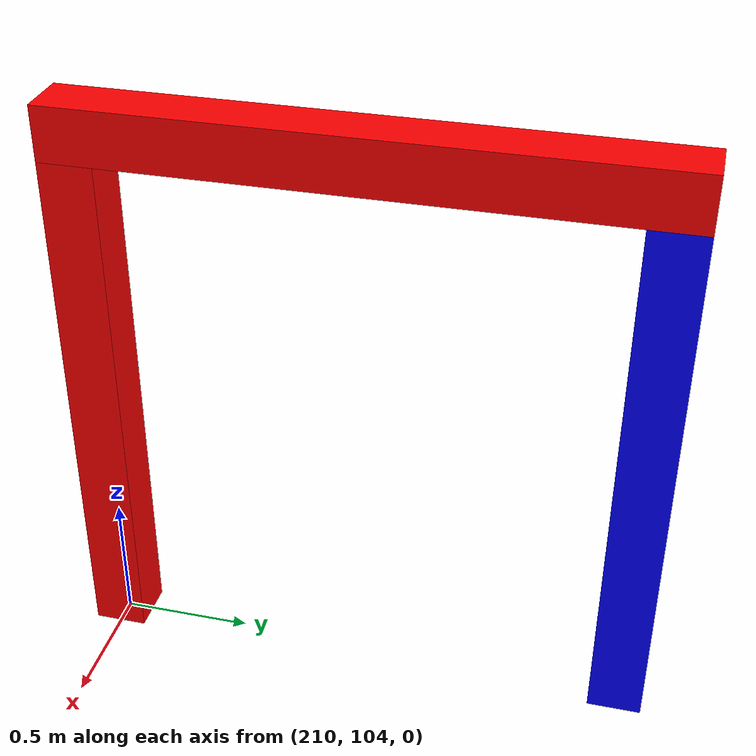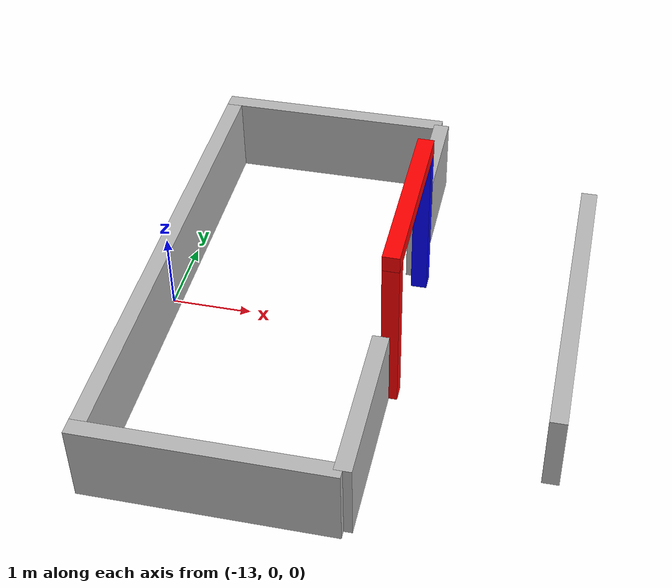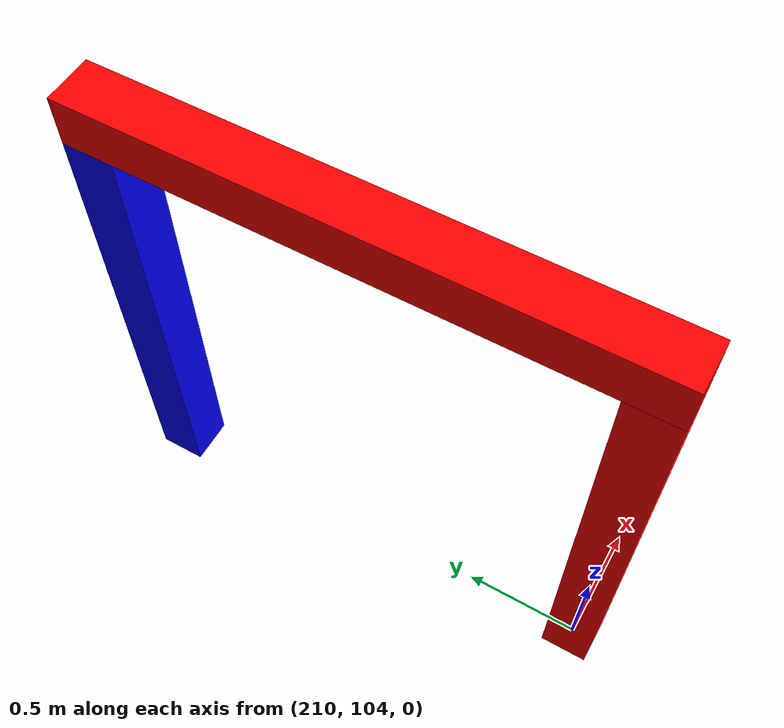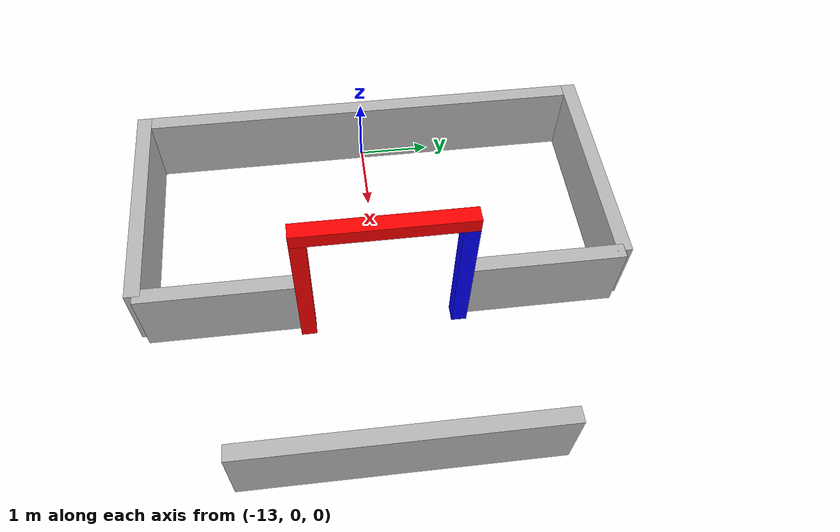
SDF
<sdf version="1.3">
 <world name="default">
  <light type="directional" name="sun">
   <pose>0 0 100 0 0 0</pose>
   <diffuse>0.9 0.9 0.9 1</diffuse>
   <specular>0.1 0.1 0.1 1</specular>
   <attenuation>
    <range>1000</range>
    <constant>0.9</constant>
    <linear>0.01</linear>
    <quadratic>0.001</quadratic>
   </attenuation>
   <direction>0.2 0.0 -1.0</direction>
  </light>
  <light type="point" name="light_bulb">
   <cast_shadows>false</cast_shadows>
   <pose>-14 0 5 0 0 0</pose>
   <diffuse>0.5 0.5 0.5 1</diffuse>
   <specular>0.0 0.0 0.0 1</specular>
   <attenuation>
    <range>80</range>
    <constant>0.9</constant>
    <linear>0.01</linear>
    <quadratic>0.001</quadratic>
   </attenuation>
  </light>
  <include><uri>model://gate</uri><pose>210 105 1.0 0 0 0</pose></include>
  <include><uri>model://starting_pen</uri><pose>-13 0 0.5 0 0 0</pose></include>
  <include><uri>model://gate</uri><name>start_gate</name><pose>-10 0 1.0 0 0 0</pose></include>
 </world>
</sdf>

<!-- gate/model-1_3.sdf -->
<sdf version="1.3">

  <model name="gate">
    <static>true</static>
    <pose>0 0 1.0 0 0 0</pose>
    <link name="link">
      <collision name="right_collision">
        <pose>0 -1.0 0 0 0 0</pose>
        <geometry>
          <box>
            <size>0.2 0.2 2.0</size>
          </box>
        </geometry>
      </collision>
      <visual name="right_visual">
        <pose>0 -1.0 0 0 0 0</pose>
        <geometry>
          <box>
            <size>0.2 0.2 2.0</size>
          </box>
        </geometry>
        <material>
          <ambient>1 0 0 0</ambient>
          <diffuse>1 0 0 0</diffuse>
          <emissive>.2 0 0 0</emissive>
          <specular>.1 .1 .1 0</specular>
        </material>
      </visual>

      <collision name="left_collision">
        <pose>0 1.0 0 0 0 0</pose>
        <geometry>
          <box>
            <size>0.2 0.2 2.0</size>
          </box>
        </geometry>
      </collision>
      <visual name="left_visual">
        <pose>0 1.0 0 0 0 0</pose>
        <geometry>
          <box>
            <size>0.2 0.2 2.0</size>
          </box>
        </geometry>
        <material>
          <ambient>0 0 1 0</ambient>
          <diffuse>0 0 1 0</diffuse>
          <emissive>0 0 .2 0</emissive>
          <specular>.1 .1 .1 0</specular>
        </material>
      </visual>

      <collision name="top_collision">
        <pose>0 0 1.1 0 0 0</pose>
        <geometry>
          <box>
            <size>0.2 2.2 0.2</size>
          </box>
        </geometry>
      </collision>
      <visual name="top_visual">
        <pose>0 0 1.1 0 0 0</pose>
        <geometry>
          <box>
            <size>0.2 2.2 0.2</size>
          </box>
        </geometry>
        <material>
          <ambient>1 0 0 0</ambient>
          <diffuse>1 0 0 0</diffuse>
          <emissive>.2 0 0 0</emissive>
          <specular>.1 .1 .1 0</specular>
        </material>
      </visual>
    </link>
  </model>
</sdf>

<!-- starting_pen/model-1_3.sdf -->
<sdf version="1.3">
  <model name="starting_pen">
    <static>true</static>
    <pose>-2.0 0 0.5 0 0 0</pose>
    <link name="link">
      <collision name="back_collision">
        <geometry>
          <box>
            <size>0.2 6 1.0</size>
          </box>
        </geometry>
      </collision>
      <visual name="back_visual">
        <geometry>
          <box>
            <size>0.2 6 1.0</size>
          </box>
        </geometry>
        <material>
          <script>
            <uri>file://media/materials/scripts/drc_qual.material</uri>
            <name>DRCQual/WarningWall</name>
          </script>
        </material>
      </visual>

      <collision name="left_collision">
        <pose>1.4 -3.1 0 0 0 0</pose>
        <geometry>
          <box>
            <size>3 0.2 1.0</size>
          </box>
        </geometry>
      </collision>
      <visual name="left_visual_lower">
        <pose>1.4 -3.1 0.0 0 0 0</pose>
        <geometry>
          <box>
            <size>3 0.2 1.0</size>
          </box>
        </geometry>
        <material>
          <script>
            <uri>file://media/materials/scripts/drc_qual.material</uri>
            <name>DRCQual/WarningWall</name>
          </script>
        </material>
      </visual>

      <collision name="right_collision">
        <pose>1.4 3.1 0 0 0 0</pose>
        <geometry>
          <box>
            <size>3 0.2 1.0</size>
          </box>
        </geometry>
      </collision>
      <visual name="right_visual">
        <pose>1.4 3.1 0 0 0 0</pose>
        <geometry>
          <box>
            <size>3 0.2 1.0</size>
          </box>
        </geometry>
        <material>
          <script>
            <uri>file://media/materials/scripts/drc_qual.material</uri>
            <name>DRCQual/WarningWall</name>
          </script>
        </material>
      </visual>

      <collision name="front_right_collision">
        <pose>2.9 2.1 0 0 0 0</pose>
        <geometry>
          <box>
            <size>0.2 2.0 1.0</size>
          </box>
        </geometry>
      </collision>
      <visual name="front_right_visual">
        <pose>2.9 2.1 0 0 0 0</pose>
        <geometry>
          <box>
            <size>0.2 2.0 1.0</size>
          </box>
        </geometry>
        <material>
          <script>
            <uri>file://media/materials/scripts/drc_qual.material</uri>
            <name>DRCQual/WarningWall</name>
          </script>
        </material>
      </visual>

      <collision name="front_left_collision">
        <pose>2.9 -2.1 0 0 0 0</pose>
        <geometry>
          <box>
            <size>0.2 2.0 1.0</size>
          </box>
        </geometry>
      </collision>
      <visual name="front_left_visual">
        <pose>2.9 -2.1 0 0 0 0</pose>
        <geometry>
          <box>
            <size>0.2 2.0 1.0</size>
          </box>
        </geometry>
        <material>
          <script>
            <uri>file://media/materials/scripts/drc_qual.material</uri>
            <name>DRCQual/WarningWall</name>
          </script>
        </material>
      </visual>

      <collision name="front_collision">
        <pose>5.0 0 0 0 0 0</pose>
        <geometry>
          <box>
            <size>0.2 4 1.0</size>
          </box>
        </geometry>
      </collision>
      <visual name="front_visual">
        <pose>5.0 0 0 0 0 0</pose>
        <geometry>
          <box>
            <size>0.2 4 1.0</size>
          </box>
        </geometry>
        <material>
          <script>
            <uri>file://media/materials/scripts/drc_qual.material</uri>
            <name>DRCQual/WarningWall</name>
          </script>
        </material>
      </visual>
    </link>
  </model>
</sdf>
